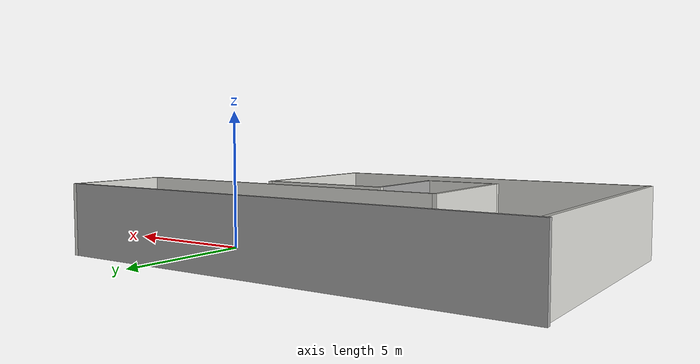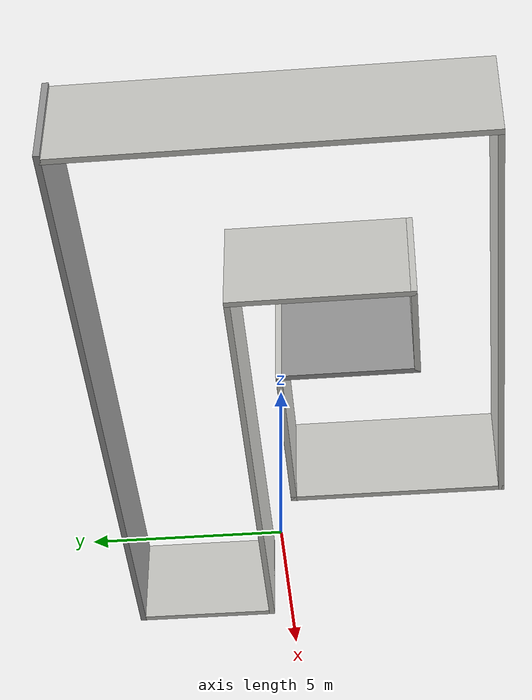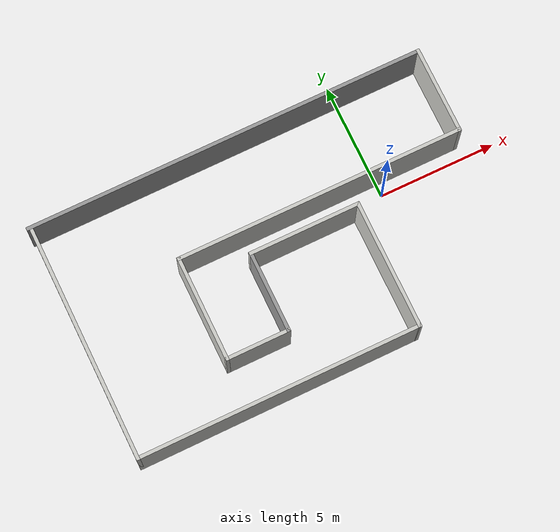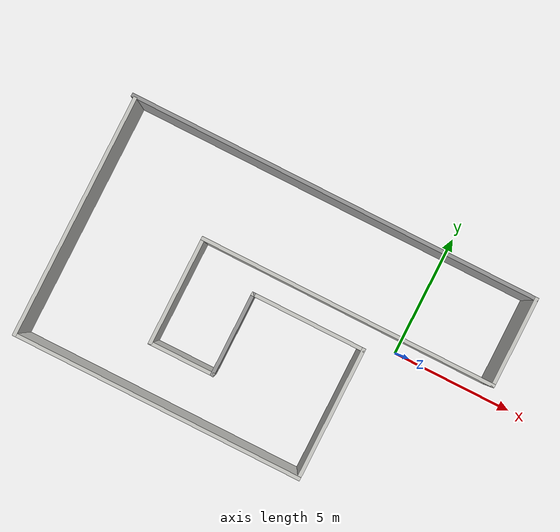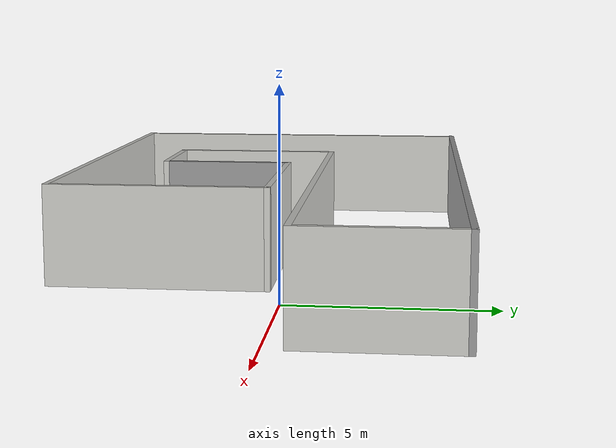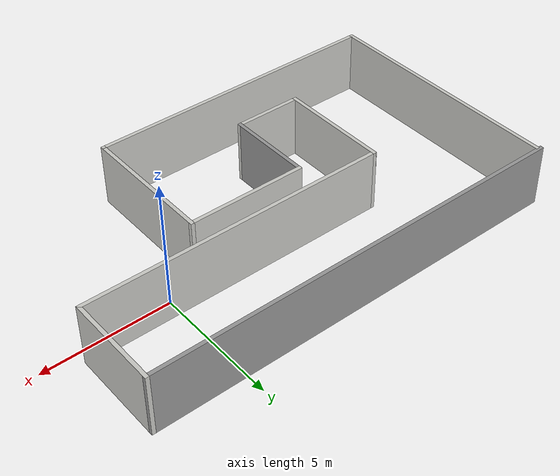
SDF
<?xml version='1.0'?>
<sdf version='1.7'>
  <model name='walls_environment'>
    <pose>-4.88829 -0.814388 0 0 -0 0</pose>
    <link name='Wall_1'>
      <collision name='Wall_1_Collision'>
        <geometry>
          <box>
            <size>10 0.15 2.5</size>
          </box>
        </geometry>
        <pose>0 0 1.25 0 -0 0</pose>
      </collision>
      <visual name='Wall_1_Visual'>
        <pose>0 0 1.25 0 -0 0</pose>
        <geometry>
          <box>
            <size>10 0.15 2.5</size>
          </box>
        </geometry>
        <material>
          <script>
            <uri>file://media/materials/scripts/gazebo.material</uri>
            <name>Gazebo/CeilingTiled</name>
          </script>
          <ambient>1 1 1 1</ambient>
        </material>
        <meta>
          <layer>0</layer>
        </meta>
      </visual>
      <pose>-8.325 -0.05 0 0 -0 -1.5708</pose>
    </link>
    <link name='Wall_10'>
      <collision name='Wall_10_Collision'>
        <geometry>
          <box>
            <size>17 0.15 2.5</size>
          </box>
        </geometry>
        <pose>0 0 1.25 0 -0 0</pose>
      </collision>
      <visual name='Wall_10_Visual'>
        <pose>0 0 1.25 0 -0 0</pose>
        <geometry>
          <box>
            <size>17 0.15 2.5</size>
          </box>
        </geometry>
        <material>
          <script>
            <uri>file://media/materials/scripts/gazebo.material</uri>
            <name>Gazebo/Grey</name>
          </script>
          <ambient>1 1 1 1</ambient>
        </material>
        <meta>
          <layer>0</layer>
        </meta>
      </visual>
      <pose>-0 4.975 0 0 -0 3.14159</pose>
    </link>
    <link name='Wall_2'>
      <collision name='Wall_2_Collision'>
        <geometry>
          <box>
            <size>12 0.15 2.5</size>
          </box>
        </geometry>
        <pose>0 0 1.25 0 -0 0</pose>
      </collision>
      <visual name='Wall_2_Visual'>
        <pose>0 0 1.25 0 -0 0</pose>
        <geometry>
          <box>
            <size>12 0.15 2.5</size>
          </box>
        </geometry>
        <material>
          <script>
            <uri>file://media/materials/scripts/gazebo.material</uri>
            <name>Gazebo/CeilingTiled</name>
          </script>
          <ambient>1 1 1 1</ambient>
        </material>
        <meta>
          <layer>0</layer>
        </meta>
      </visual>
      <pose>-2.4 -4.975 0 0 -0 0</pose>
    </link>
    <link name='Wall_3'>
      <collision name='Wall_3_Collision'>
        <geometry>
          <box>
            <size>5.5 0.15 2.5</size>
          </box>
        </geometry>
        <pose>0 0 1.25 0 -0 0</pose>
      </collision>
      <visual name='Wall_3_Visual'>
        <pose>0 0 1.25 0 -0 0</pose>
        <geometry>
          <box>
            <size>5.5 0.15 2.5</size>
          </box>
        </geometry>
        <material>
          <script>
            <uri>file://media/materials/scripts/gazebo.material</uri>
            <name>Gazebo/CeilingTiled</name>
          </script>
          <ambient>1 1 1 1</ambient>
        </material>
        <meta>
          <layer>0</layer>
        </meta>
      </visual>
      <pose>3.525 -2.3 0 0 -0 1.5708</pose>
    </link>
    <link name='Wall_4'>
      <collision name='Wall_4_Collision'>
        <geometry>
          <box>
            <size>4.75 0.15 2.5</size>
          </box>
        </geometry>
        <pose>0 0 1.25 0 -0 0</pose>
      </collision>
      <visual name='Wall_4_Visual'>
        <pose>0 0 1.25 0 -0 0</pose>
        <geometry>
          <box>
            <size>4.75 0.15 2.5</size>
          </box>
        </geometry>
        <material>
          <script>
            <uri>file://media/materials/scripts/gazebo.material</uri>
            <name>Gazebo/CeilingTiled</name>
          </script>
          <ambient>1 1 1 1</ambient>
        </material>
        <meta>
          <layer>0</layer>
        </meta>
      </visual>
      <pose>1.225 0.375 0 0 -0 3.14159</pose>
    </link>
    <link name='Wall_5'>
      <collision name='Wall_5_Collision'>
        <geometry>
          <box>
            <size>3.5 0.15 2.5</size>
          </box>
        </geometry>
        <pose>0 0 1.25 0 -0 0</pose>
      </collision>
      <visual name='Wall_5_Visual'>
        <pose>0 0 1.25 0 -0 0</pose>
        <geometry>
          <box>
            <size>3.5 0.15 2.5</size>
          </box>
        </geometry>
        <material>
          <script>
            <uri>file://media/materials/scripts/gazebo.material</uri>
            <name>Gazebo/Grey</name>
          </script>
          <ambient>1 1 1 1</ambient>
        </material>
        <meta>
          <layer>0</layer>
        </meta>
      </visual>
      <pose>-1.075 -1.3 0 0 -0 -1.5708</pose>
    </link>
    <link name='Wall_6'>
      <collision name='Wall_6_Collision'>
        <geometry>
          <box>
            <size>2.75 0.15 2.5</size>
          </box>
        </geometry>
        <pose>0 0 1.25 0 -0 0</pose>
      </collision>
      <visual name='Wall_6_Visual'>
        <pose>0 0 1.25 0 -0 0</pose>
        <geometry>
          <box>
            <size>2.75 0.15 2.5</size>
          </box>
        </geometry>
        <material>
          <script>
            <uri>file://media/materials/scripts/gazebo.material</uri>
            <name>Gazebo/CeilingTiled</name>
          </script>
          <ambient>1 1 1 1</ambient>
        </material>
        <meta>
          <layer>0</layer>
        </meta>
      </visual>
      <pose>-2.375 -2.975 0 0 -0 3.14159</pose>
    </link>
    <link name='Wall_7'>
      <collision name='Wall_7_Collision'>
        <geometry>
          <box>
            <size>4.5 0.15 2.5</size>
          </box>
        </geometry>
        <pose>0 0 1.25 0 -0 0</pose>
      </collision>
      <visual name='Wall_7_Visual'>
        <pose>0 0 1.25 0 -0 0</pose>
        <geometry>
          <box>
            <size>4.5 0.15 2.5</size>
          </box>
        </geometry>
        <material>
          <script>
            <uri>file://media/materials/scripts/gazebo.material</uri>
            <name>Gazebo/CeilingTiled</name>
          </script>
          <ambient>1 1 1 1</ambient>
        </material>
        <meta>
          <layer>0</layer>
        </meta>
      </visual>
      <pose>-3.675 -0.8 0 0 -0 1.5708</pose>
    </link>
    <link name='Wall_8'>
      <collision name='Wall_8_Collision'>
        <geometry>
          <box>
            <size>12.25 0.15 2.5</size>
          </box>
        </geometry>
        <pose>0 0 1.25 0 -0 0</pose>
      </collision>
      <visual name='Wall_8_Visual'>
        <pose>0 0 1.25 0 -0 0</pose>
        <geometry>
          <box>
            <size>12.25 0.15 2.5</size>
          </box>
        </geometry>
        <material>
          <script>
            <uri>file://media/materials/scripts/gazebo.material</uri>
            <name>Gazebo/CeilingTiled</name>
          </script>
          <ambient>1 1 1 1</ambient>
        </material>
        <meta>
          <layer>0</layer>
        </meta>
      </visual>
      <pose>2.375 1.375 0 0 -0 0</pose>
    </link>
    <link name='Wall_9'>
      <collision name='Wall_9_Collision'>
        <geometry>
          <box>
            <size>3.75 0.15 2.5</size>
          </box>
        </geometry>
        <pose>0 0 1.25 0 -0 0</pose>
      </collision>
      <visual name='Wall_9_Visual'>
        <pose>0 0 1.25 0 -0 0</pose>
        <geometry>
          <box>
            <size>3.75 0.15 2.5</size>
          </box>
        </geometry>
        <material>
          <script>
            <uri>file://media/materials/scripts/gazebo.material</uri>
            <name>Gazebo/CeilingTiled</name>
          </script>
          <ambient>1 1 1 1</ambient>
        </material>
        <meta>
          <layer>0</layer>
        </meta>
      </visual>
      <pose>8.425 3.175 0 0 -0 1.5708</pose>
    </link>
    <static>1</static>
  </model>
</sdf>
